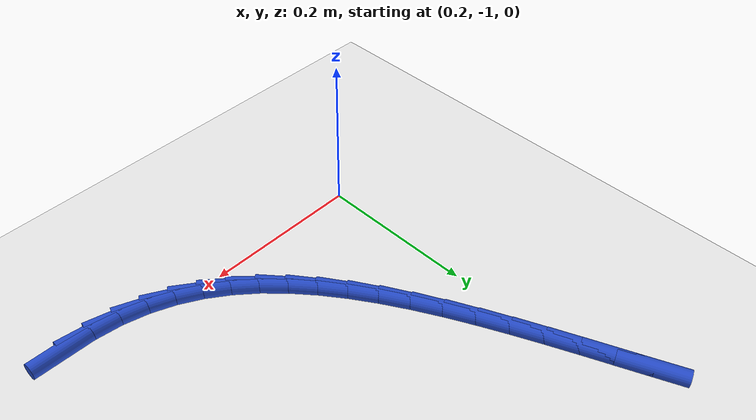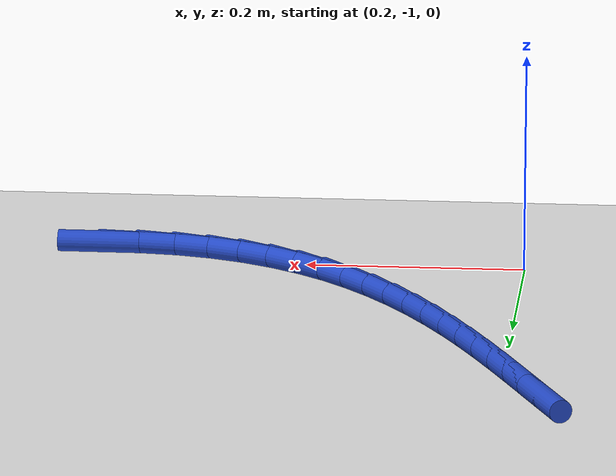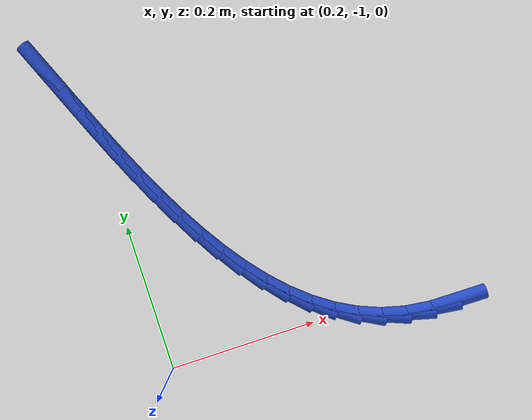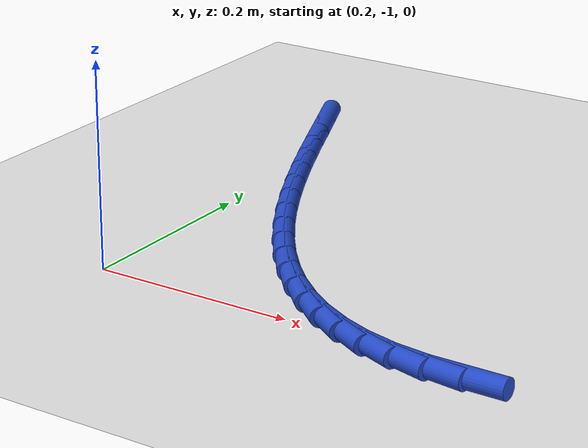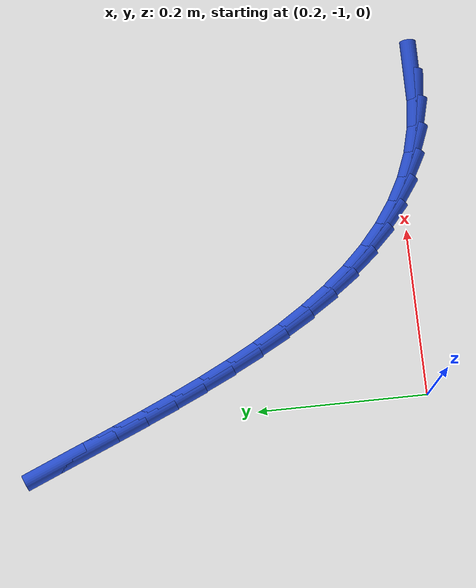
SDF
<sdf version="1.6">
 <world name="default">
  <model name="ground_plane">
   <static>1</static>
   <link name="link">
    <collision name="collision">
     <geometry><plane><normal>0 0 1</normal><size>100 100</size></plane></geometry>
     <surface><friction><ode><mu>100</mu><mu2>50</mu2></ode></friction></surface>
    </collision>
    <visual name="visual">
     <cast_shadows>0</cast_shadows>
     <geometry><plane><normal>0 0 1</normal><size>100 100</size></plane></geometry>
     <material>
      <script><uri>file://media/materials/scripts/gazebo.material</uri><name>Gazebo/WhiteGlow</name></script>
     </material>
    </visual>
   </link>
  </model>
  <model name="line">
   <link name="link_204">
    <pose>0.592828837219807 -1.029557737772241 0.01 0 1.57 -0.0065892668054753</pose>
    <collision name="collision">
     <geometry><cylinder><radius>0.01</radius><length>0.08</length></cylinder></geometry>
    </collision>
    <visual name="visual">
     <material>
      <script><name>Gazebo/Blue</name><uri>file://media/materials/scripts/gazebo.material</uri></script>
     </material>
     <geometry><cylinder><radius>0.01</radius><length>0.08</length></cylinder></geometry>
    </visual>
   </link>
   <link name="link_205">
    <pose>0.5564205529940566 -1.0293178304014035 0.01 0 1.57 -0.12156522513997388</pose>
    <collision name="collision">
     <geometry><cylinder><radius>0.01</radius><length>0.08</length></cylinder></geometry>
    </collision>
    <visual name="visual">
     <material>
      <script><name>Gazebo/Blue</name><uri>file://media/materials/scripts/gazebo.material</uri></script>
     </material>
     <geometry><cylinder><radius>0.01</radius><length>0.08</length></cylinder></geometry>
    </visual>
   </link>
   <link name="link_206">
    <pose>0.52200010530663 -1.0251127662002544 0.01 0 1.57 -0.24935598297269115</pose>
    <collision name="collision">
     <geometry><cylinder><radius>0.01</radius><length>0.08</length></cylinder></geometry>
    </collision>
    <visual name="visual">
     <material>
      <script><name>Gazebo/Blue</name><uri>file://media/materials/scripts/gazebo.material</uri></script>
     </material>
     <geometry><cylinder><radius>0.01</radius><length>0.08</length></cylinder></geometry>
    </visual>
   </link>
   <link name="link_207">
    <pose>0.48964967229792233 -1.0168745334486815 0.01 0 1.57 -0.3759260105285905</pose>
    <collision name="collision">
     <geometry><cylinder><radius>0.01</radius><length>0.08</length></cylinder></geometry>
    </collision>
    <visual name="visual">
     <material>
      <script><name>Gazebo/Blue</name><uri>file://media/materials/scripts/gazebo.material</uri></script>
     </material>
     <geometry><cylinder><radius>0.01</radius><length>0.08</length></cylinder></geometry>
    </visual>
   </link>
   <link name="link_208">
    <pose>0.45925439834249204 -1.004877626583498 0.01 0 1.57 -0.4967966199417644</pose>
    <collision name="collision">
     <geometry><cylinder><radius>0.01</radius><length>0.08</length></cylinder></geometry>
    </collision>
    <visual name="visual">
     <material>
      <script><name>Gazebo/Blue</name><uri>file://media/materials/scripts/gazebo.material</uri></script>
     </material>
     <geometry><cylinder><radius>0.01</radius><length>0.08</length></cylinder></geometry>
    </visual>
   </link>
   <link name="link_209">
    <pose>0.4306994278148999 -0.9893965400415183 0.01 0 1.57 -0.6084737199614504</pose>
    <collision name="collision">
     <geometry><cylinder><radius>0.01</radius><length>0.08</length></cylinder></geometry>
    </collision>
    <visual name="visual">
     <material>
      <script><name>Gazebo/Blue</name><uri>file://media/materials/scripts/gazebo.material</uri></script>
     </material>
     <geometry><cylinder><radius>0.01</radius><length>0.08</length></cylinder></geometry>
    </visual>
   </link>
   <link name="link_210">
    <pose>0.403869905089704 -0.9707057682595551 0.01 0 1.57 -0.7088487906102067</pose>
    <collision name="collision">
     <geometry><cylinder><radius>0.01</radius><length>0.08</length></cylinder></geometry>
    </collision>
    <visual name="visual">
     <material>
      <script><name>Gazebo/Blue</name><uri>file://media/materials/scripts/gazebo.material</uri></script>
     </material>
     <geometry><cylinder><radius>0.01</radius><length>0.08</length></cylinder></geometry>
    </visual>
   </link>
   <link name="link_211">
    <pose>0.3786509745414634 -0.9490798056744219 0.01 0 1.57 -0.7971340686538444</pose>
    <collision name="collision">
     <geometry><cylinder><radius>0.01</radius><length>0.08</length></cylinder></geometry>
    </collision>
    <visual name="visual">
     <material>
      <script><name>Gazebo/Blue</name><uri>file://media/materials/scripts/gazebo.material</uri></script>
     </material>
     <geometry><cylinder><radius>0.01</radius><length>0.08</length></cylinder></geometry>
    </visual>
   </link>
   <link name="link_212">
    <pose>0.3549277805447371 -0.9247931467229317 0.01 0 1.57 -0.8735205133039091</pose>
    <collision name="collision">
     <geometry><cylinder><radius>0.01</radius><length>0.08</length></cylinder></geometry>
    </collision>
    <visual name="visual">
     <material>
      <script><name>Gazebo/Blue</name><uri>file://media/materials/scripts/gazebo.material</uri></script>
     </material>
     <geometry><cylinder><radius>0.01</radius><length>0.08</length></cylinder></geometry>
    </visual>
   </link>
   <link name="link_213">
    <pose>0.3325854674740845 -0.8981202858418986 0.01 0 1.57 -0.9387797549668312</pose>
    <collision name="collision">
     <geometry><cylinder><radius>0.01</radius><length>0.08</length></cylinder></geometry>
    </collision>
    <visual name="visual">
     <material>
      <script><name>Gazebo/Blue</name><uri>file://media/materials/scripts/gazebo.material</uri></script>
     </material>
     <geometry><cylinder><radius>0.01</radius><length>0.08</length></cylinder></geometry>
    </visual>
   </link>
   <link name="link_214">
    <pose>0.31150917970406433 -0.8693357174681355 0.01 0 1.57 -0.9939400718045115</pose>
    <collision name="collision">
     <geometry><cylinder><radius>0.01</radius><length>0.08</length></cylinder></geometry>
    </collision>
    <visual name="visual">
     <material>
      <script><name>Gazebo/Blue</name><uri>file://media/materials/scripts/gazebo.material</uri></script>
     </material>
     <geometry><cylinder><radius>0.01</radius><length>0.08</length></cylinder></geometry>
    </visual>
   </link>
   <link name="link_215">
    <pose>0.2915840616092352 -0.8387139360384551 0.01 0 1.57 -1.0400713179038679</pose>
    <collision name="collision">
     <geometry><cylinder><radius>0.01</radius><length>0.08</length></cylinder></geometry>
    </collision>
    <visual name="visual">
     <material>
      <script><name>Gazebo/Blue</name><uri>file://media/materials/scripts/gazebo.material</uri></script>
     </material>
     <geometry><cylinder><radius>0.01</radius><length>0.08</length></cylinder></geometry>
    </visual>
   </link>
   <link name="link_216">
    <pose>0.2726952575641574 -0.8065294359896724 0.01 0 1.57 -1.0781627740868582</pose>
    <collision name="collision">
     <geometry><cylinder><radius>0.01</radius><length>0.08</length></cylinder></geometry>
    </collision>
    <visual name="visual">
     <material>
      <script><name>Gazebo/Blue</name><uri>file://media/materials/scripts/gazebo.material</uri></script>
     </material>
     <geometry><cylinder><radius>0.01</radius><length>0.08</length></cylinder></geometry>
    </visual>
   </link>
   <link name="link_217">
    <pose>0.25472791194338945 -0.7730567117586002 0.01 0 1.57 -1.1090639754146936</pose>
    <collision name="collision">
     <geometry><cylinder><radius>0.01</radius><length>0.08</length></cylinder></geometry>
    </collision>
    <visual name="visual">
     <material>
      <script><name>Gazebo/Blue</name><uri>file://media/materials/scripts/gazebo.material</uri></script>
     </material>
     <geometry><cylinder><radius>0.01</radius><length>0.08</length></cylinder></geometry>
    </visual>
   </link>
   <link name="link_218">
    <pose>0.23756716912149017 -0.7385702577820515 0.01 0 1.57 -1.1334621108027088</pose>
    <collision name="collision">
     <geometry><cylinder><radius>0.01</radius><length>0.08</length></cylinder></geometry>
    </collision>
    <visual name="visual">
     <material>
      <script><name>Gazebo/Blue</name><uri>file://media/materials/scripts/gazebo.material</uri></script>
     </material>
     <geometry><cylinder><radius>0.01</radius><length>0.08</length></cylinder></geometry>
    </visual>
   </link>
   <link name="link_219">
    <pose>0.22109817347301886 -0.70334456849684 0.01 0 1.57 -1.1518775363695744</pose>
    <collision name="collision">
     <geometry><cylinder><radius>0.01</radius><length>0.08</length></cylinder></geometry>
    </collision>
    <visual name="visual">
     <material>
      <script><name>Gazebo/Blue</name><uri>file://media/materials/scripts/gazebo.material</uri></script>
     </material>
     <geometry><cylinder><radius>0.01</radius><length>0.08</length></cylinder></geometry>
    </visual>
   </link>
   <link name="link_220">
    <pose>0.20520606937253455 -0.6676541383397792 0.01 0 1.57 -1.1646658746466718</pose>
    <collision name="collision">
     <geometry><cylinder><radius>0.01</radius><length>0.08</length></cylinder></geometry>
    </collision>
    <visual name="visual">
     <material>
      <script><name>Gazebo/Blue</name><uri>file://media/materials/scripts/gazebo.material</uri></script>
     </material>
     <geometry><cylinder><radius>0.01</radius><length>0.08</length></cylinder></geometry>
    </visual>
   </link>
   <link name="link_221">
    <pose>0.1897760011945962 -0.6317734617476819 0.01 0 1.57 -1.1720198324064774</pose>
    <collision name="collision">
     <geometry><cylinder><radius>0.01</radius><length>0.08</length></cylinder></geometry>
    </collision>
    <visual name="visual">
     <material>
      <script><name>Gazebo/Blue</name><uri>file://media/materials/scripts/gazebo.material</uri></script>
     </material>
     <geometry><cylinder><radius>0.01</radius><length>0.08</length></cylinder></geometry>
    </visual>
   </link>
   <link name="link_222">
    <pose>0.17469311331376297 -0.5959770331573621 0.01 0 1.57 -1.1739665363332088</pose>
    <collision name="collision">
     <geometry><cylinder><radius>0.01</radius><length>0.08</length></cylinder></geometry>
    </collision>
    <visual name="visual">
     <material>
      <script><name>Gazebo/Blue</name><uri>file://media/materials/scripts/gazebo.material</uri></script>
     </material>
     <geometry><cylinder><radius>0.01</radius><length>0.08</length></cylinder></geometry>
    </visual>
   </link>
   <link name="link_223">
    <pose>0.15984255010459353 -0.5605393470056318 0.01 0 1.57 -1.1703574408809567</pose>
    <collision name="collision">
     <geometry><cylinder><radius>0.01</radius><length>0.08</length></cylinder></geometry>
    </collision>
    <visual name="visual">
     <material>
      <script><name>Gazebo/Blue</name><uri>file://media/materials/scripts/gazebo.material</uri></script>
     </material>
     <geometry><cylinder><radius>0.01</radius><length>0.08</length></cylinder></geometry>
    </visual>
   </link>
  </model>
 </world>
</sdf>
